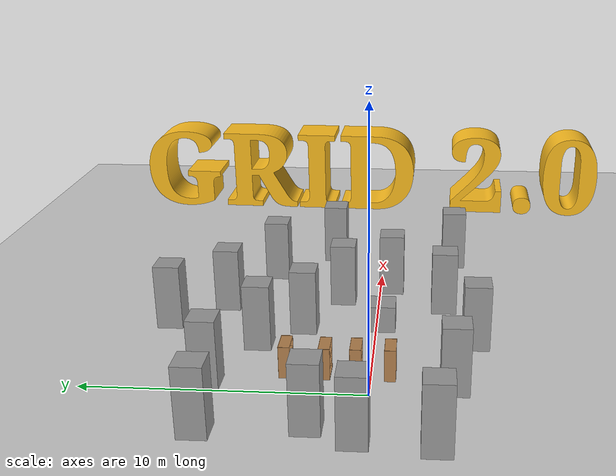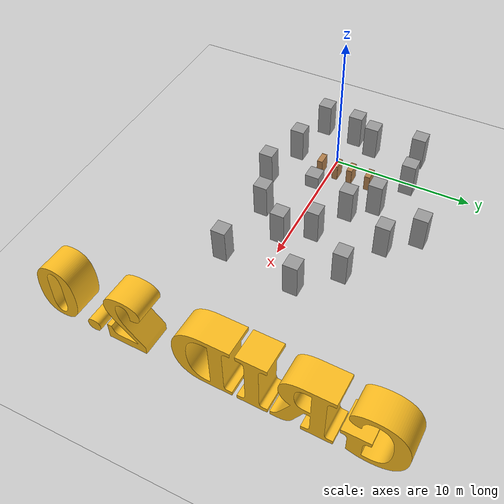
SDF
<sdf version="1.6">
 <world name="default">
  <light name="sun" type="directional">
   <pose>0 0 10 0 -0 0</pose>
   <diffuse>0.8 0.8 0.8 1</diffuse>
   <specular>0.2 0.2 0.2 1</specular>
   <attenuation>
    <range>1000</range>
    <constant>0.9</constant>
    <linear>0.01</linear>
    <quadratic>0.001</quadratic>
   </attenuation>
   <direction>-0.5 0.1 -0.9</direction>
  </light>
  <model name="ground_plane">
   <static>1</static>
   <link name="link">
    <collision name="collision">
     <geometry><plane><normal>0 0 1</normal><size>100 100</size></plane></geometry>
     <surface>
      <contact><collide_bitmask>65535</collide_bitmask></contact>
      <friction><ode><mu>100</mu><mu2>50</mu2></ode></friction>
     </surface>
    </collision>
    <visual name="visual">
     <cast_shadows>0</cast_shadows>
     <geometry><plane><normal>0 0 1</normal><size>100 100</size></plane></geometry>
     <material>
      <script><uri>file://media/materials/scripts/gazebo.material</uri><name>Gazebo/Grey</name></script>
     </material>
    </visual>
   </link>
  </model>
  <gravity>0 0 -9.8</gravity>
  <magnetic_field>6e-06 2.3e-05 -4.2e-05</magnetic_field>
  <atmosphere type="adiabatic"/>
  <physics name="default_physics" default="0" type="ode">
   <max_step_size>0.001</max_step_size>
   <real_time_factor>1</real_time_factor>
   <real_time_update_rate>1000</real_time_update_rate>
  </physics>
  <scene><ambient>0.4 0.4 0.4 1</ambient><background>0.7 0.7 0.7 1</background><shadows>1</shadows></scene>
  <spherical_coordinates>
   <surface_model>EARTH_WGS84</surface_model>
   <latitude_deg>0</latitude_deg>
   <longitude_deg>0</longitude_deg>
   <elevation>0</elevation>
   <heading_deg>0</heading_deg>
  </spherical_coordinates>
  <model name="bookshelf">
   <static>1</static>
   <link name="link">
    <inertial><mass>1</mass></inertial>
    <collision name="back">
     <pose>0 0.005 0.6 0 -0 0</pose>
     <geometry><box><size>0.9 0.01 1.2</size></box></geometry>
    </collision>
    <visual name="visual1">
     <pose>0 0.005 0.6 0 -0 0</pose>
     <geometry><box><size>0.9 0.01 1.2</size></box></geometry>
     <material>
      <script><uri>file://media/materials/scripts/gazebo.material</uri><name>Gazebo/Wood</name></script>
     </material>
    </visual>
    <collision name="left_side">
     <pose>0.45 -0.195 0.6 0 -0 0</pose>
     <geometry><box><size>0.02 0.4 1.2</size></box></geometry>
    </collision>
    <visual name="visual2">
     <pose>0.45 -0.195 0.6 0 -0 0</pose>
     <geometry><box><size>0.02 0.4 1.2</size></box></geometry>
     <material>
      <script><uri>file://media/materials/scripts/gazebo.material</uri><name>Gazebo/Wood</name></script>
     </material>
    </visual>
    <collision name="right_side">
     <pose>-0.45 -0.195 0.6 0 -0 0</pose>
     <geometry><box><size>0.02 0.4 1.2</size></box></geometry>
    </collision>
    <visual name="visual3">
     <pose>-0.45 -0.195 0.6 0 -0 0</pose>
     <geometry><box><size>0.02 0.4 1.2</size></box></geometry>
     <material>
      <script><uri>file://media/materials/scripts/gazebo.material</uri><name>Gazebo/Wood</name></script>
     </material>
    </visual>
    <collision name="bottom">
     <pose>0 -0.195 0.03 0 -0 0</pose>
     <geometry><box><size>0.88 0.4 0.06</size></box></geometry>
    </collision>
    <visual name="visual4">
     <pose>0 -0.195 0.03 0 -0 0</pose>
     <geometry><box><size>0.88 0.4 0.06</size></box></geometry>
     <material>
      <script><uri>file://media/materials/scripts/gazebo.material</uri><name>Gazebo/Wood</name></script>
     </material>
    </visual>
    <collision name="top">
     <pose>0 -0.195 1.19 0 -0 0</pose>
     <geometry><box><size>0.88 0.4 0.02</size></box></geometry>
    </collision>
    <visual name="visual5">
     <pose>0 -0.195 1.19 0 -0 0</pose>
     <geometry><box><size>0.88 0.4 0.02</size></box></geometry>
     <material>
      <script><uri>file://media/materials/scripts/gazebo.material</uri><name>Gazebo/Wood</name></script>
     </material>
    </visual>
    <collision name="low_shelf">
     <pose>0 -0.195 0.43 0 -0 0</pose>
     <geometry><box><size>0.88 0.4 0.02</size></box></geometry>
    </collision>
    <visual name="visual6">
     <pose>0 -0.195 0.43 0 -0 0</pose>
     <geometry><box><size>0.88 0.4 0.02</size></box></geometry>
     <material>
      <script><uri>file://media/materials/scripts/gazebo.material</uri><name>Gazebo/Wood</name></script>
     </material>
    </visual>
    <collision name="high_shelf">
     <pose>0 -0.195 0.8 0 -0 0</pose>
     <geometry><box><size>0.88 0.4 0.02</size></box></geometry>
    </collision>
    <visual name="visual7">
     <pose>0 -0.195 0.8 0 -0 0</pose>
     <geometry><box><size>0.88 0.4 0.02</size></box></geometry>
     <material>
      <script><uri>file://media/materials/scripts/gazebo.material</uri><name>Gazebo/Wood</name></script>
     </material>
    </visual>
   </link>
   <pose>1.40267 -0.472214 0 0 -0 0</pose>
  </model>
  <model name="bookshelf_0">
   <static>1</static>
   <link name="link">
    <inertial><mass>1</mass></inertial>
    <collision name="back">
     <pose>0 0.005 0.6 0 -0 0</pose>
     <geometry><box><size>0.9 0.01 1.2</size></box></geometry>
    </collision>
    <visual name="visual1">
     <pose>0 0.005 0.6 0 -0 0</pose>
     <geometry><box><size>0.9 0.01 1.2</size></box></geometry>
     <material>
      <script><uri>file://media/materials/scripts/gazebo.material</uri><name>Gazebo/Wood</name></script>
     </material>
    </visual>
    <collision name="left_side">
     <pose>0.45 -0.195 0.6 0 -0 0</pose>
     <geometry><box><size>0.02 0.4 1.2</size></box></geometry>
    </collision>
    <visual name="visual2">
     <pose>0.45 -0.195 0.6 0 -0 0</pose>
     <geometry><box><size>0.02 0.4 1.2</size></box></geometry>
     <material>
      <script><uri>file://media/materials/scripts/gazebo.material</uri><name>Gazebo/Wood</name></script>
     </material>
    </visual>
    <collision name="right_side">
     <pose>-0.45 -0.195 0.6 0 -0 0</pose>
     <geometry><box><size>0.02 0.4 1.2</size></box></geometry>
    </collision>
    <visual name="visual3">
     <pose>-0.45 -0.195 0.6 0 -0 0</pose>
     <geometry><box><size>0.02 0.4 1.2</size></box></geometry>
     <material>
      <script><uri>file://media/materials/scripts/gazebo.material</uri><name>Gazebo/Wood</name></script>
     </material>
    </visual>
    <collision name="bottom">
     <pose>0 -0.195 0.03 0 -0 0</pose>
     <geometry><box><size>0.88 0.4 0.06</size></box></geometry>
    </collision>
    <visual name="visual4">
     <pose>0 -0.195 0.03 0 -0 0</pose>
     <geometry><box><size>0.88 0.4 0.06</size></box></geometry>
     <material>
      <script><uri>file://media/materials/scripts/gazebo.material</uri><name>Gazebo/Wood</name></script>
     </material>
    </visual>
    <collision name="top">
     <pose>0 -0.195 1.19 0 -0 0</pose>
     <geometry><box><size>0.88 0.4 0.02</size></box></geometry>
    </collision>
    <visual name="visual5">
     <pose>0 -0.195 1.19 0 -0 0</pose>
     <geometry><box><size>0.88 0.4 0.02</size></box></geometry>
     <material>
      <script><uri>file://media/materials/scripts/gazebo.material</uri><name>Gazebo/Wood</name></script>
     </material>
    </visual>
    <collision name="low_shelf">
     <pose>0 -0.195 0.43 0 -0 0</pose>
     <geometry><box><size>0.88 0.4 0.02</size></box></geometry>
    </collision>
    <visual name="visual6">
     <pose>0 -0.195 0.43 0 -0 0</pose>
     <geometry><box><size>0.88 0.4 0.02</size></box></geometry>
     <material>
      <script><uri>file://media/materials/scripts/gazebo.material</uri><name>Gazebo/Wood</name></script>
     </material>
    </visual>
    <collision name="high_shelf">
     <pose>0 -0.195 0.8 0 -0 0</pose>
     <geometry><box><size>0.88 0.4 0.02</size></box></geometry>
    </collision>
    <visual name="visual7">
     <pose>0 -0.195 0.8 0 -0 0</pose>
     <geometry><box><size>0.88 0.4 0.02</size></box></geometry>
     <material>
      <script><uri>file://media/materials/scripts/gazebo.material</uri><name>Gazebo/Wood</name></script>
     </material>
    </visual>
   </link>
   <pose>1.39696 0.724905 0 0 -0 0</pose>
  </model>
  <model name="bookshelf_1">
   <static>1</static>
   <link name="link">
    <inertial><mass>1</mass></inertial>
    <collision name="back">
     <pose>0 0.005 0.6 0 -0 0</pose>
     <geometry><box><size>0.9 0.01 1.2</size></box></geometry>
    </collision>
    <visual name="visual1">
     <pose>0 0.005 0.6 0 -0 0</pose>
     <geometry><box><size>0.9 0.01 1.2</size></box></geometry>
     <material>
      <script><uri>file://media/materials/scripts/gazebo.material</uri><name>Gazebo/Wood</name></script>
     </material>
    </visual>
    <collision name="left_side">
     <pose>0.45 -0.195 0.6 0 -0 0</pose>
     <geometry><box><size>0.02 0.4 1.2</size></box></geometry>
    </collision>
    <visual name="visual2">
     <pose>0.45 -0.195 0.6 0 -0 0</pose>
     <geometry><box><size>0.02 0.4 1.2</size></box></geometry>
     <material>
      <script><uri>file://media/materials/scripts/gazebo.material</uri><name>Gazebo/Wood</name></script>
     </material>
    </visual>
    <collision name="right_side">
     <pose>-0.45 -0.195 0.6 0 -0 0</pose>
     <geometry><box><size>0.02 0.4 1.2</size></box></geometry>
    </collision>
    <visual name="visual3">
     <pose>-0.45 -0.195 0.6 0 -0 0</pose>
     <geometry><box><size>0.02 0.4 1.2</size></box></geometry>
     <material>
      <script><uri>file://media/materials/scripts/gazebo.material</uri><name>Gazebo/Wood</name></script>
     </material>
    </visual>
    <collision name="bottom">
     <pose>0 -0.195 0.03 0 -0 0</pose>
     <geometry><box><size>0.88 0.4 0.06</size></box></geometry>
    </collision>
    <visual name="visual4">
     <pose>0 -0.195 0.03 0 -0 0</pose>
     <geometry><box><size>0.88 0.4 0.06</size></box></geometry>
     <material>
      <script><uri>file://media/materials/scripts/gazebo.material</uri><name>Gazebo/Wood</name></script>
     </material>
    </visual>
    <collision name="top">
     <pose>0 -0.195 1.19 0 -0 0</pose>
     <geometry><box><size>0.88 0.4 0.02</size></box></geometry>
    </collision>
    <visual name="visual5">
     <pose>0 -0.195 1.19 0 -0 0</pose>
     <geometry><box><size>0.88 0.4 0.02</size></box></geometry>
     <material>
      <script><uri>file://media/materials/scripts/gazebo.material</uri><name>Gazebo/Wood</name></script>
     </material>
    </visual>
    <collision name="low_shelf">
     <pose>0 -0.195 0.43 0 -0 0</pose>
     <geometry><box><size>0.88 0.4 0.02</size></box></geometry>
    </collision>
    <visual name="visual6">
     <pose>0 -0.195 0.43 0 -0 0</pose>
     <geometry><box><size>0.88 0.4 0.02</size></box></geometry>
     <material>
      <script><uri>file://media/materials/scripts/gazebo.material</uri><name>Gazebo/Wood</name></script>
     </material>
    </visual>
    <collision name="high_shelf">
     <pose>0 -0.195 0.8 0 -0 0</pose>
     <geometry><box><size>0.88 0.4 0.02</size></box></geometry>
    </collision>
    <visual name="visual7">
     <pose>0 -0.195 0.8 0 -0 0</pose>
     <geometry><box><size>0.88 0.4 0.02</size></box></geometry>
     <material>
      <script><uri>file://media/materials/scripts/gazebo.material</uri><name>Gazebo/Wood</name></script>
     </material>
    </visual>
   </link>
   <pose>1.39225 1.81172 0 0 -0 0</pose>
  </model>
  <model name="bookshelf_2">
   <static>1</static>
   <link name="link">
    <inertial><mass>1</mass></inertial>
    <collision name="back">
     <pose>0 0.005 0.6 0 -0 0</pose>
     <geometry><box><size>0.9 0.01 1.2</size></box></geometry>
    </collision>
    <visual name="visual1">
     <pose>0 0.005 0.6 0 -0 0</pose>
     <geometry><box><size>0.9 0.01 1.2</size></box></geometry>
     <material>
      <script><uri>file://media/materials/scripts/gazebo.material</uri><name>Gazebo/Wood</name></script>
     </material>
    </visual>
    <collision name="left_side">
     <pose>0.45 -0.195 0.6 0 -0 0</pose>
     <geometry><box><size>0.02 0.4 1.2</size></box></geometry>
    </collision>
    <visual name="visual2">
     <pose>0.45 -0.195 0.6 0 -0 0</pose>
     <geometry><box><size>0.02 0.4 1.2</size></box></geometry>
     <material>
      <script><uri>file://media/materials/scripts/gazebo.material</uri><name>Gazebo/Wood</name></script>
     </material>
    </visual>
    <collision name="right_side">
     <pose>-0.45 -0.195 0.6 0 -0 0</pose>
     <geometry><box><size>0.02 0.4 1.2</size></box></geometry>
    </collision>
    <visual name="visual3">
     <pose>-0.45 -0.195 0.6 0 -0 0</pose>
     <geometry><box><size>0.02 0.4 1.2</size></box></geometry>
     <material>
      <script><uri>file://media/materials/scripts/gazebo.material</uri><name>Gazebo/Wood</name></script>
     </material>
    </visual>
    <collision name="bottom">
     <pose>0 -0.195 0.03 0 -0 0</pose>
     <geometry><box><size>0.88 0.4 0.06</size></box></geometry>
    </collision>
    <visual name="visual4">
     <pose>0 -0.195 0.03 0 -0 0</pose>
     <geometry><box><size>0.88 0.4 0.06</size></box></geometry>
     <material>
      <script><uri>file://media/materials/scripts/gazebo.material</uri><name>Gazebo/Wood</name></script>
     </material>
    </visual>
    <collision name="top">
     <pose>0 -0.195 1.19 0 -0 0</pose>
     <geometry><box><size>0.88 0.4 0.02</size></box></geometry>
    </collision>
    <visual name="visual5">
     <pose>0 -0.195 1.19 0 -0 0</pose>
     <geometry><box><size>0.88 0.4 0.02</size></box></geometry>
     <material>
      <script><uri>file://media/materials/scripts/gazebo.material</uri><name>Gazebo/Wood</name></script>
     </material>
    </visual>
    <collision name="low_shelf">
     <pose>0 -0.195 0.43 0 -0 0</pose>
     <geometry><box><size>0.88 0.4 0.02</size></box></geometry>
    </collision>
    <visual name="visual6">
     <pose>0 -0.195 0.43 0 -0 0</pose>
     <geometry><box><size>0.88 0.4 0.02</size></box></geometry>
     <material>
      <script><uri>file://media/materials/scripts/gazebo.material</uri><name>Gazebo/Wood</name></script>
     </material>
    </visual>
    <collision name="high_shelf">
     <pose>0 -0.195 0.8 0 -0 0</pose>
     <geometry><box><size>0.88 0.4 0.02</size></box></geometry>
    </collision>
    <visual name="visual7">
     <pose>0 -0.195 0.8 0 -0 0</pose>
     <geometry><box><size>0.88 0.4 0.02</size></box></geometry>
     <material>
      <script><uri>file://media/materials/scripts/gazebo.material</uri><name>Gazebo/Wood</name></script>
     </material>
    </visual>
   </link>
   <pose>1.4303 3.20274 0 0 -0 0</pose>
  </model>
  <model name="unit_box">
   <pose>3.6295 -0.268728 1.27693 1e-06 0 0.00145</pose>
   <link name="link">
    <inertial>
     <mass>1</mass>
     <inertia>
      <ixx>0.166667</ixx>
      <ixy>0</ixy>
      <ixz>0</ixz>
      <iyy>0.166667</iyy>
      <iyz>0</iyz>
      <izz>0.166667</izz>
     </inertia>
    </inertial>
    <collision name="collision"><geometry><box><size>1 1 0.999995</size></box></geometry></collision>
    <visual name="visual">
     <geometry><box><size>1 1 0.999995</size></box></geometry>
     <material>
      <script><name>Gazebo/Grey</name><uri>file://media/materials/scripts/gazebo.material</uri></script>
     </material>
    </visual>
   </link>
  </model>
  <model name="unit_box_clone">
   <pose>4.81091 2.76596 1.27694 -4e-06 -5e-06 -0.001707</pose>
   <link name="link">
    <inertial>
     <mass>1</mass>
     <inertia>
      <ixx>0.166667</ixx>
      <ixy>0</ixy>
      <ixz>0</ixz>
      <iyy>0.166667</iyy>
      <iyz>0</iyz>
      <izz>0.166667</izz>
     </inertia>
    </inertial>
    <collision name="collision"><geometry><box><size>1 1 2.55426</size></box></geometry></collision>
    <visual name="visual">
     <geometry><box><size>1 1 2.55426</size></box></geometry>
     <material>
      <script><name>Gazebo/Grey</name><uri>file://media/materials/scripts/gazebo.material</uri></script>
     </material>
    </visual>
   </link>
  </model>
  <model name="unit_box_clone_0">
   <pose>3.42552 4.29537 1.27706 -6e-06 -1e-06 6e-05</pose>
   <link name="link">
    <inertial>
     <mass>1</mass>
     <inertia>
      <ixx>0.166667</ixx>
      <ixy>0</ixy>
      <ixz>0</ixz>
      <iyy>0.166667</iyy>
      <iyz>0</iyz>
      <izz>0.166667</izz>
     </inertia>
    </inertial>
    <collision name="collision"><geometry><box><size>1 1 2.55426</size></box></geometry></collision>
    <visual name="visual">
     <geometry><box><size>1 1 2.55426</size></box></geometry>
     <material>
      <script><name>Gazebo/Grey</name><uri>file://media/materials/scripts/gazebo.material</uri></script>
     </material>
    </visual>
   </link>
  </model>
  <model name="unit_box_clone_1">
   <pose>7.49517 1.47335 1.27689 0 -0 -0.001233</pose>
   <link name="link">
    <inertial>
     <mass>1</mass>
     <inertia>
      <ixx>0.166667</ixx>
      <ixy>0</ixy>
      <ixz>0</ixz>
      <iyy>0.166667</iyy>
      <iyz>0</iyz>
      <izz>0.166667</izz>
     </inertia>
    </inertial>
    <collision name="collision"><geometry><box><size>1 1 2.55426</size></box></geometry></collision>
    <visual name="visual">
     <geometry><box><size>1 1 2.55426</size></box></geometry>
     <material>
      <script><name>Gazebo/Grey</name><uri>file://media/materials/scripts/gazebo.material</uri></script>
     </material>
    </visual>
   </link>
  </model>
  <model name="unit_box_clone_2">
   <pose>8.67361 -0.461513 1.27683 4.9e-05 -3e-06 -0.001154</pose>
   <link name="link">
    <inertial>
     <mass>1</mass>
     <inertia>
      <ixx>0.166667</ixx>
      <ixy>0</ixy>
      <ixz>0</ixz>
      <iyy>0.166667</iyy>
      <iyz>0</iyz>
      <izz>0.166667</izz>
     </inertia>
    </inertial>
    <collision name="collision"><geometry><box><size>1 1 2.55426</size></box></geometry></collision>
    <visual name="visual">
     <geometry><box><size>1 1 2.55426</size></box></geometry>
     <material>
      <script><name>Gazebo/Grey</name><uri>file://media/materials/scripts/gazebo.material</uri></script>
     </material>
    </visual>
   </link>
  </model>
  <model name="unit_box_clone_3">
   <pose>6.87752 -2.62002 1.2771 -2e-06 -2e-06 -0.001743</pose>
   <link name="link">
    <inertial>
     <mass>1</mass>
     <inertia>
      <ixx>0.166667</ixx>
      <ixy>0</ixy>
      <ixz>0</ixz>
      <iyy>0.166667</iyy>
      <iyz>0</iyz>
      <izz>0.166667</izz>
     </inertia>
    </inertial>
    <collision name="collision"><geometry><box><size>1 1 2.55426</size></box></geometry></collision>
    <visual name="visual">
     <geometry><box><size>1 1 2.55426</size></box></geometry>
     <material>
      <script><name>Gazebo/Grey</name><uri>file://media/materials/scripts/gazebo.material</uri></script>
     </material>
    </visual>
   </link>
  </model>
  <model name="unit_box_clone_4">
   <pose>9.97973 4.55342 1.2768 -2e-06 -0 -0.000758</pose>
   <link name="link">
    <inertial>
     <mass>1</mass>
     <inertia>
      <ixx>0.166667</ixx>
      <ixy>0</ixy>
      <ixz>0</ixz>
      <iyy>0.166667</iyy>
      <iyz>0</iyz>
      <izz>0.166667</izz>
     </inertia>
    </inertial>
    <collision name="collision"><geometry><box><size>1 1 2.55426</size></box></geometry></collision>
    <visual name="visual">
     <geometry><box><size>1 1 2.55426</size></box></geometry>
     <material>
      <script><name>Gazebo/Grey</name><uri>file://media/materials/scripts/gazebo.material</uri></script>
     </material>
    </visual>
   </link>
  </model>
  <model name="unit_box_clone_5">
   <pose>6.73121 6.07639 1.27711 2e-06 -3e-06 -0.003589</pose>
   <link name="link">
    <inertial>
     <mass>1</mass>
     <inertia>
      <ixx>0.166667</ixx>
      <ixy>0</ixy>
      <ixz>0</ixz>
      <iyy>0.166667</iyy>
      <iyz>0</iyz>
      <izz>0.166667</izz>
     </inertia>
    </inertial>
    <collision name="collision"><geometry><box><size>1 1 2.55426</size></box></geometry></collision>
    <visual name="visual">
     <geometry><box><size>1 1 2.55426</size></box></geometry>
     <material>
      <script><name>Gazebo/Grey</name><uri>file://media/materials/scripts/gazebo.material</uri></script>
     </material>
    </visual>
   </link>
  </model>
  <model name="unit_box_clone_6">
   <pose>12.1931 2.20619 1.27713 1e-06 -0 -0.001287</pose>
   <link name="link">
    <inertial>
     <mass>1</mass>
     <inertia>
      <ixx>0.166667</ixx>
      <ixy>0</ixy>
      <ixz>0</ixz>
      <iyy>0.166667</iyy>
      <iyz>0</iyz>
      <izz>0.166667</izz>
     </inertia>
    </inertial>
    <collision name="collision"><geometry><box><size>1 1 2.55426</size></box></geometry></collision>
    <visual name="visual">
     <geometry><box><size>1 1 2.55426</size></box></geometry>
     <material>
      <script><name>Gazebo/Grey</name><uri>file://media/materials/scripts/gazebo.material</uri></script>
     </material>
    </visual>
   </link>
  </model>
  <model name="unit_box_clone_7">
   <pose>11.662 -3.12561 1.27713 1e-06 -0 -0.001711</pose>
   <link name="link">
    <inertial>
     <mass>1</mass>
     <inertia>
      <ixx>0.166667</ixx>
      <ixy>0</ixy>
      <ixz>0</ixz>
      <iyy>0.166667</iyy>
      <iyz>0</iyz>
      <izz>0.166667</izz>
     </inertia>
    </inertial>
    <collision name="collision"><geometry><box><size>1 1 2.55426</size></box></geometry></collision>
    <visual name="visual">
     <geometry><box><size>1 1 2.55426</size></box></geometry>
     <material>
      <script><name>Gazebo/Grey</name><uri>file://media/materials/scripts/gazebo.material</uri></script>
     </material>
    </visual>
   </link>
  </model>
  <model name="unit_box_clone_8">
   <pose>3.83644 -3.75818 1.27684 5e-06 3e-06 -0.001214</pose>
   <link name="link">
    <inertial>
     <mass>1</mass>
     <inertia>
      <ixx>0.166667</ixx>
      <ixy>0</ixy>
      <ixz>0</ixz>
      <iyy>0.166667</iyy>
      <iyz>0</iyz>
      <izz>0.166667</izz>
     </inertia>
    </inertial>
    <collision name="collision"><geometry><box><size>1 1 2.55426</size></box></geometry></collision>
    <visual name="visual">
     <geometry><box><size>1 1 2.55426</size></box></geometry>
     <material>
      <script><name>Gazebo/Grey</name><uri>file://media/materials/scripts/gazebo.material</uri></script>
     </material>
    </visual>
   </link>
  </model>
  <model name="unit_box_clone_9">
   <pose>-2.05762 1.84968 1.27689 0 0 -0.000783</pose>
   <link name="link">
    <inertial>
     <mass>1</mass>
     <inertia>
      <ixx>0.166667</ixx>
      <ixy>0</ixy>
      <ixz>0</ixz>
      <iyy>0.166667</iyy>
      <iyz>0</iyz>
      <izz>0.166667</izz>
     </inertia>
    </inertial>
    <collision name="collision"><geometry><box><size>1 1 2.55426</size></box></geometry></collision>
    <visual name="visual">
     <geometry><box><size>1 1 2.55426</size></box></geometry>
     <material>
      <script><name>Gazebo/Grey</name><uri>file://media/materials/scripts/gazebo.material</uri></script>
     </material>
    </visual>
   </link>
  </model>
  <model name="unit_box_clone_10">
   <pose>0.551445 -2.88649 1.27704 6e-06 1.1e-05 0.000931</pose>
   <link name="link">
    <inertial>
     <mass>1</mass>
     <inertia>
      <ixx>0.166667</ixx>
      <ixy>0</ixy>
      <ixz>0</ixz>
      <iyy>0.166667</iyy>
      <iyz>0</iyz>
      <izz>0.166667</izz>
     </inertia>
    </inertial>
    <collision name="collision"><geometry><box><size>1 1 2.55426</size></box></geometry></collision>
    <visual name="visual">
     <geometry><box><size>1 1 2.55426</size></box></geometry>
     <material>
      <script><name>Gazebo/Grey</name><uri>file://media/materials/scripts/gazebo.material</uri></script>
     </material>
    </visual>
   </link>
  </model>
  <model name="unit_box_clone_11">
   <pose>-2.72897 0.327917 1.27686 -1e-06 1e-06 -0.001257</pose>
   <link name="link">
    <inertial>
     <mass>1</mass>
     <inertia>
      <ixx>0.166667</ixx>
      <ixy>0</ixy>
      <ixz>0</ixz>
      <iyy>0.166667</iyy>
      <iyz>0</iyz>
      <izz>0.166667</izz>
     </inertia>
    </inertial>
    <collision name="collision"><geometry><box><size>1 1 2.55426</size></box></geometry></collision>
    <visual name="visual">
     <geometry><box><size>1 1 2.55426</size></box></geometry>
     <material>
      <script><name>Gazebo/Grey</name><uri>file://media/materials/scripts/gazebo.material</uri></script>
     </material>
    </visual>
   </link>
  </model>
  <model name="unit_box_clone_12">
   <pose>0.55565 5.63668 1.27697 -2e-06 -0 -0.001184</pose>
   <link name="link">
    <inertial>
     <mass>1</mass>
     <inertia>
      <ixx>0.166667</ixx>
      <ixy>0</ixy>
      <ixz>0</ixz>
      <iyy>0.166667</iyy>
      <iyz>0</iyz>
      <izz>0.166667</izz>
     </inertia>
    </inertial>
    <collision name="collision"><geometry><box><size>1 1 2.55426</size></box></geometry></collision>
    <visual name="visual">
     <geometry><box><size>1 1 2.55426</size></box></geometry>
     <material>
      <script><name>Gazebo/Grey</name><uri>file://media/materials/scripts/gazebo.material</uri></script>
     </material>
    </visual>
   </link>
  </model>
  <model name="unit_box_clone_13">
   <pose>5.00001 8 1.27713 0 0 -0.000805</pose>
   <link name="link">
    <inertial>
     <mass>1</mass>
     <inertia>
      <ixx>0.166667</ixx>
      <ixy>0</ixy>
      <ixz>0</ixz>
      <iyy>0.166667</iyy>
      <iyz>0</iyz>
      <izz>0.166667</izz>
     </inertia>
    </inertial>
    <collision name="collision"><geometry><box><size>1 1 2.55426</size></box></geometry></collision>
    <visual name="visual">
     <geometry><box><size>1 1 2.55426</size></box></geometry>
     <material>
      <script><name>Gazebo/Grey</name><uri>file://media/materials/scripts/gazebo.material</uri></script>
     </material>
    </visual>
   </link>
  </model>
  <model name="unit_box_clone_14">
   <pose>-2.4387 5.32336 1.27712 1e-06 -1e-06 0.003185</pose>
   <link name="link">
    <inertial>
     <mass>1</mass>
     <inertia>
      <ixx>0.166667</ixx>
      <ixy>0</ixy>
      <ixz>0</ixz>
      <iyy>0.166667</iyy>
      <iyz>0</iyz>
      <izz>0.166667</izz>
     </inertia>
    </inertial>
    <collision name="collision"><geometry><box><size>1 1 2.55426</size></box></geometry></collision>
    <visual name="visual">
     <geometry><box><size>1 1 2.55426</size></box></geometry>
     <material>
      <script><name>Gazebo/Grey</name><uri>file://media/materials/scripts/gazebo.material</uri></script>
     </material>
    </visual>
   </link>
  </model>
  <model name="unit_box_clone_15">
   <pose>-2.98551 -2.24232 1.27713 -0 -2e-06 0.000353</pose>
   <link name="link">
    <inertial>
     <mass>1</mass>
     <inertia>
      <ixx>0.166667</ixx>
      <ixy>0</ixy>
      <ixz>0</ixz>
      <iyy>0.166667</iyy>
      <iyz>0</iyz>
      <izz>0.166667</izz>
     </inertia>
    </inertial>
    <collision name="collision"><geometry><box><size>1 1 2.55426</size></box></geometry></collision>
    <visual name="visual">
     <geometry><box><size>1 1 2.55426</size></box></geometry>
     <material>
      <script><name>Gazebo/Grey</name><uri>file://media/materials/scripts/gazebo.material</uri></script>
     </material>
    </visual>
   </link>
  </model>
  <model name="grid_2.0_yellow">
   <link name="link">
    <inertial>
     <mass>1e-08</mass>
     <inertia><ixx>0</ixx><ixy>0</ixy><ixz>0</ixz><iyy>0</iyy><iyz>0</iyz><izz>0</izz></inertia>
    </inertial>
    <pose>0 -0.080345 2.91944 1.59831 -0 0</pose>
    <visual name="visual">
     <geometry>
      <mesh><uri>model://rotors_description/meshes/grid.stl</uri><scale>0.2 0.2 0.2</scale></mesh>
     </geometry>
     <material>
      <script><name>Gazebo/Grey</name><uri>file://media/materials/scripts/gazebo.material</uri></script>
      <shader type="pixel"><normal_map>__default__</normal_map></shader>
      <ambient>0.988 0.741 0.122 1</ambient>
      <diffuse>0.988 0.741 0.122 1</diffuse>
      <specular>0.988 0.741 0.122 1</specular>
      <emissive>0 0 0 1</emissive>
     </material>
     <pose>-0.1 0 0 0 -0 0</pose>
    </visual>
    <collision name="collision">
     <pose>0 0 1 0 -0 0</pose>
     <geometry><box><size>25 6 2</size></box></geometry>
     <surface>
      <friction>
       <ode><mu>1</mu><mu2>1</mu2><fdir1>0 0 0</fdir1><slip1>0</slip1><slip2>0</slip2></ode>
       <torsional>
        <coefficient>1</coefficient>
        <patch_radius>0</patch_radius>
        <surface_radius>0</surface_radius>
        <use_patch_radius>1</use_patch_radius>
        <ode><slip>0</slip></ode>
       </torsional>
      </friction>
      <bounce><restitution_coefficient>0</restitution_coefficient><threshold>1e+06</threshold></bounce>
      <contact>
       <collide_without_contact>0</collide_without_contact>
       <collide_without_contact_bitmask>1</collide_without_contact_bitmask>
       <collide_bitmask>1</collide_bitmask>
       <ode>
        <soft_cfm>0</soft_cfm>
        <soft_erp>0.2</soft_erp>
        <kp>1e+13</kp>
        <kd>1</kd>
        <max_vel>0.01</max_vel>
        <min_depth>0</min_depth>
       </ode>
       <bullet>
        <split_impulse>1</split_impulse>
        <split_impulse_penetration_threshold>-0.01</split_impulse_penetration_threshold>
        <soft_cfm>0</soft_cfm>
        <soft_erp>0.2</soft_erp>
        <kp>1e+13</kp>
        <kd>1</kd>
       </bullet>
      </contact>
     </surface>
    </collision>
   </link>
   <static>0</static>
   <pose>20.5785 1.06579 0.13443 -3e-06 -0 -1.59892</pose>
  </model>
 </world>
</sdf>
